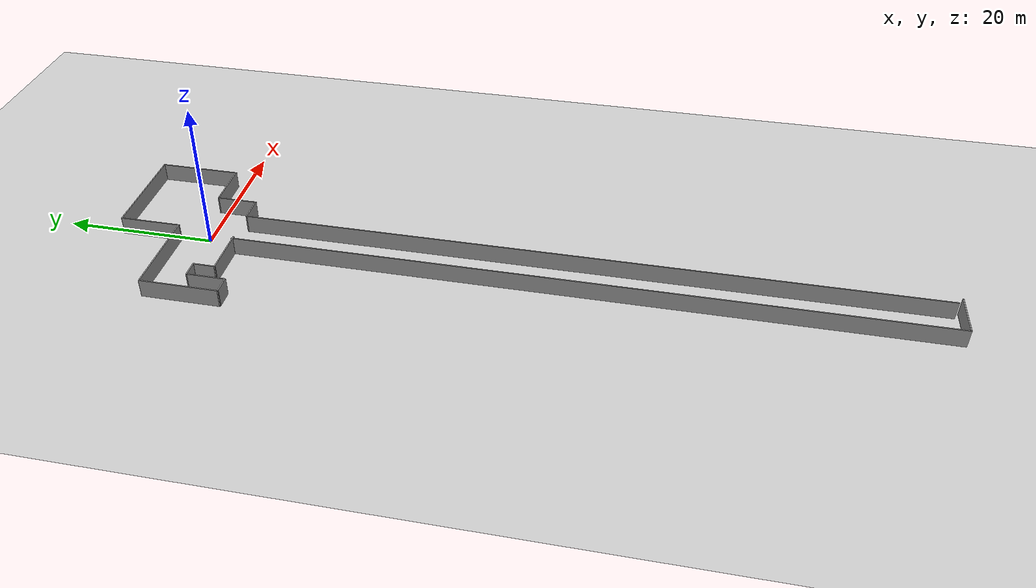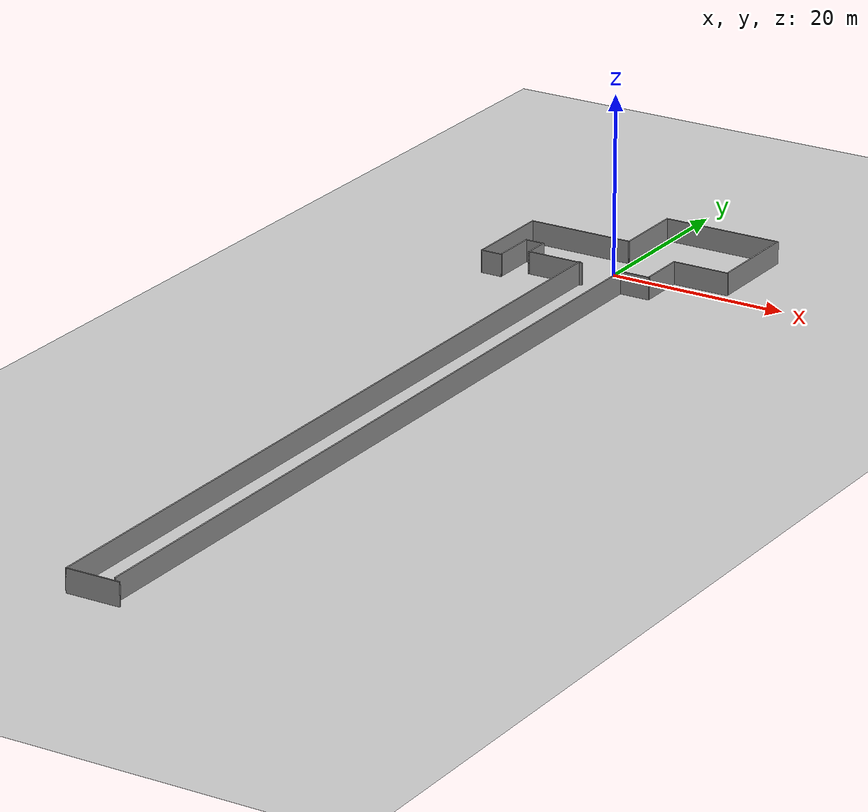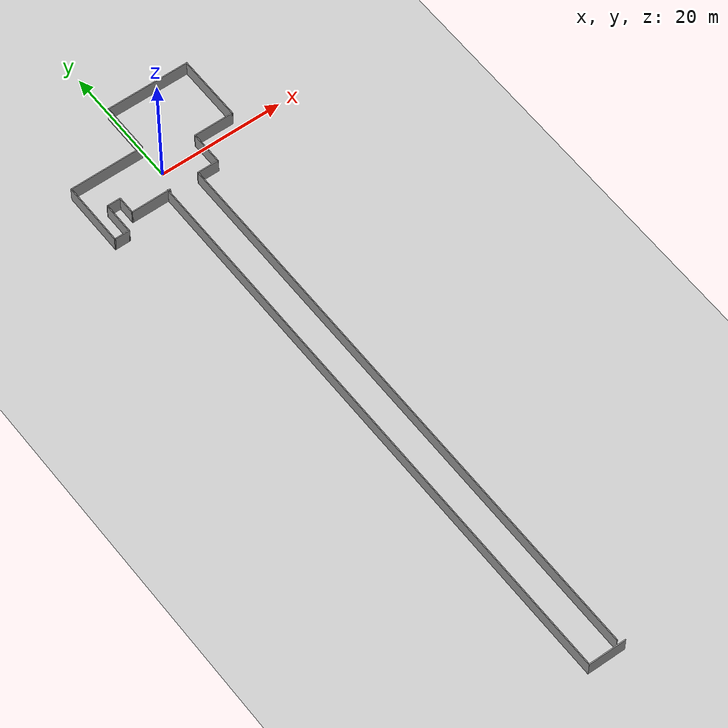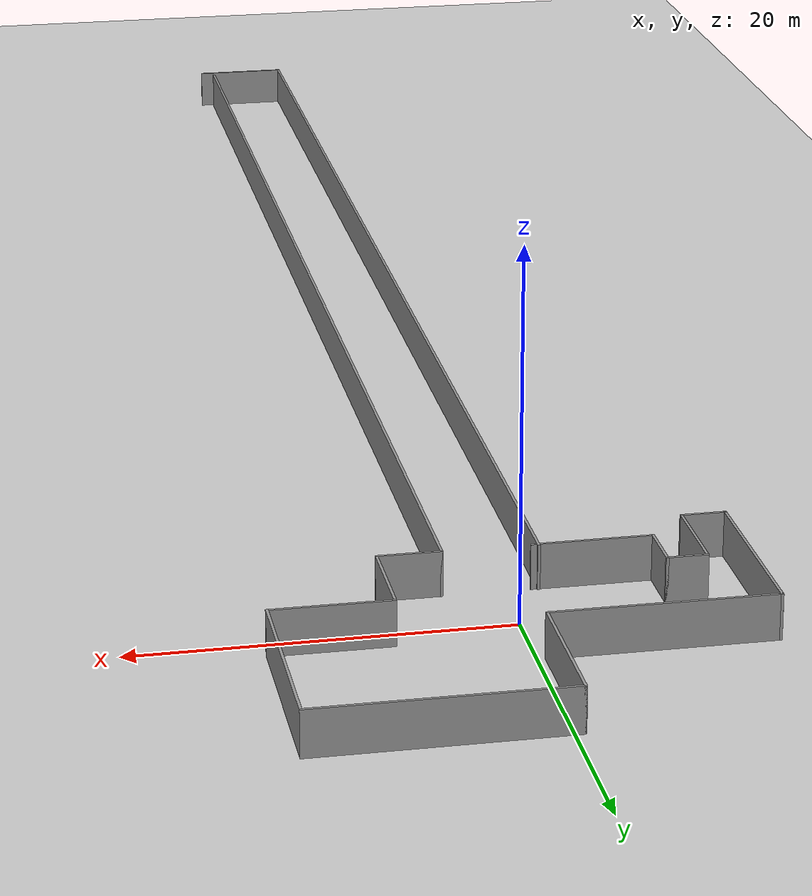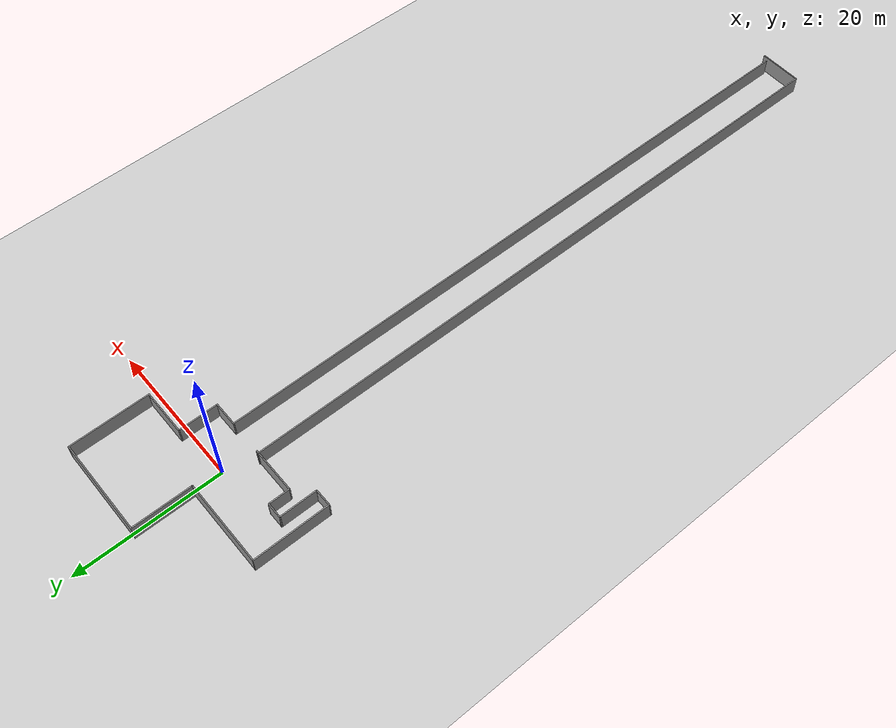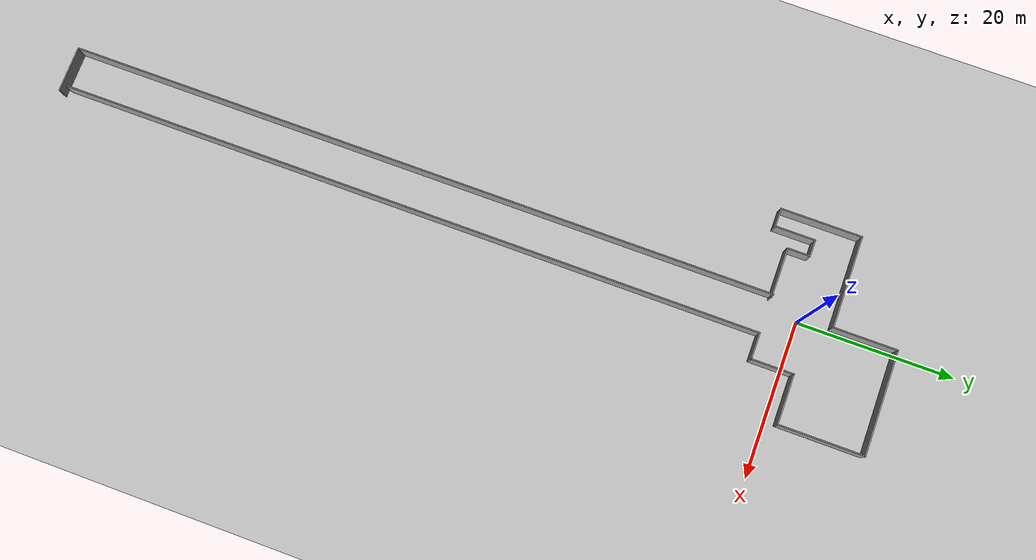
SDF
<sdf version="1.7">
 <world name="default">
  <light name="sun" type="directional">
   <pose>0 0 10 0 -0 0</pose>
   <diffuse>0.8 0.8 0.8 1</diffuse>
   <specular>0.2 0.2 0.2 1</specular>
   <attenuation>
    <range>1000</range>
    <constant>0.9</constant>
    <linear>0.01</linear>
    <quadratic>0.001</quadratic>
   </attenuation>
   <direction>-0.5 0.1 -0.9</direction>
   <spot><inner_angle>0</inner_angle><outer_angle>0</outer_angle><falloff>0</falloff></spot>
  </light>
  <model name="ground_plane">
   <static>1</static>
   <link name="link">
    <collision name="collision">
     <geometry><plane><normal>0 0 1</normal><size>100 100</size></plane></geometry>
     <surface><friction><ode><mu>100</mu><mu2>50</mu2></ode></friction></surface>
    </collision>
    <visual name="visual">
     <cast_shadows>0</cast_shadows>
     <geometry><plane><normal>0 0 1</normal><size>100 100</size></plane></geometry>
     <material>
      <script><uri>file://media/materials/scripts/gazebo.material</uri><name>Gazebo/Grey</name></script>
     </material>
    </visual>
   </link>
  </model>
  <gravity>0 0 -9.8</gravity>
  <magnetic_field>6e-06 2.3e-05 -4.2e-05</magnetic_field>
  <atmosphere type="adiabatic"/>
  <physics type="ode">
   <max_step_size>0.001</max_step_size>
   <real_time_factor>1</real_time_factor>
   <real_time_update_rate>1000</real_time_update_rate>
  </physics>
  <scene><ambient>0.4 0.4 0.4 1</ambient><background>0.7 0.7 0.7 1</background><shadows>1</shadows></scene>
  <audio><device>default</device></audio>
  <spherical_coordinates>
   <surface_model>EARTH_WGS84</surface_model>
   <latitude_deg>0</latitude_deg>
   <longitude_deg>0</longitude_deg>
   <elevation>0</elevation>
   <heading_deg>0</heading_deg>
  </spherical_coordinates>
  <model name="Untitled2">
   <pose>0.27 -41.7689 0 0 -0 0</pose>
   <link name="Wall_0">
    <collision name="Wall_0_Collision">
     <geometry><box><size>6.5 0.15 2.5</size></box></geometry>
     <pose>0 0 1.25 0 -0 0</pose>
    </collision>
    <visual name="Wall_0_Visual">
     <pose>0 0 1.25 0 -0 0</pose>
     <geometry><box><size>6.5 0.15 2.5</size></box></geometry>
     <material>
      <script><uri>file://media/materials/scripts/gazebo.material</uri><name>Gazebo/Grey</name></script>
      <ambient>1 1 1 1</ambient>
     </material>
     <meta><layer>0</layer></meta>
    </visual>
    <pose>-4.975 37.6389 0 0 -0 3.14159</pose>
   </link>
   <link name="Wall_1">
    <collision name="Wall_1_Collision">
     <geometry><box><size>3 0.15 2.5</size></box></geometry>
     <pose>0 0 1.25 0 -0 0</pose>
    </collision>
    <visual name="Wall_1_Visual">
     <pose>0 0 1.25 0 -0 0</pose>
     <geometry><box><size>3 0.15 2.5</size></box></geometry>
     <material>
      <script><uri>file://media/materials/scripts/gazebo.material</uri><name>Gazebo/Grey</name></script>
      <ambient>1 1 1 1</ambient>
     </material>
     <meta><layer>0</layer></meta>
    </visual>
    <pose>-8.15 39.0639 0 0 -0 1.5708</pose>
   </link>
   <link name="Wall_10">
    <collision name="Wall_10_Collision">
     <geometry><box><size>6.5 0.15 2.5</size></box></geometry>
     <pose>0 0 1.25 0 -0 0</pose>
    </collision>
    <visual name="Wall_10_Visual">
     <pose>0 0 1.25 0 -0 0</pose>
     <geometry><box><size>6.5 0.15 2.5</size></box></geometry>
     <material>
      <script><uri>file://media/materials/scripts/gazebo.material</uri><name>Gazebo/Grey</name></script>
      <ambient>1 1 1 1</ambient>
     </material>
     <meta><layer>0</layer></meta>
    </visual>
    <pose>9.425 42.9889 0 0 -0 3.14159</pose>
   </link>
   <link name="Wall_11">
    <collision name="Wall_11_Collision">
     <geometry><box><size>5.5 0.15 2.5</size></box></geometry>
     <pose>0 0 1.25 0 -0 0</pose>
    </collision>
    <visual name="Wall_11_Visual">
     <pose>0 0 1.25 0 -0 0</pose>
     <geometry><box><size>5.5 0.15 2.5</size></box></geometry>
     <material>
      <script><uri>file://media/materials/scripts/gazebo.material</uri><name>Gazebo/Grey</name></script>
      <ambient>1 1 1 1</ambient>
     </material>
     <meta><layer>0</layer></meta>
    </visual>
    <pose>6.25 40.3139 0 0 -0 -1.5708</pose>
   </link>
   <link name="Wall_12">
    <collision name="Wall_12_Collision">
     <geometry><box><size>3.5 0.15 2.5</size></box></geometry>
     <pose>0 0 1.25 0 -0 0</pose>
    </collision>
    <visual name="Wall_12_Visual">
     <pose>0 0 1.25 0 -0 0</pose>
     <geometry><box><size>3.5 0.15 2.5</size></box></geometry>
     <material>
      <script><uri>file://media/materials/scripts/gazebo.material</uri><name>Gazebo/Grey</name></script>
      <ambient>1 1 1 1</ambient>
     </material>
     <meta><layer>0</layer></meta>
    </visual>
    <pose>4.575 37.6389 0 0 -0 3.14159</pose>
   </link>
   <link name="Wall_13">
    <collision name="Wall_13_Collision">
     <geometry><box><size>91 0.15 2.5</size></box></geometry>
     <pose>0 0 1.25 0 -0 0</pose>
    </collision>
    <visual name="Wall_13_Visual">
     <pose>0 0 1.25 0 -0 0</pose>
     <geometry><box><size>91 0.15 2.5</size></box></geometry>
     <material>
      <script><uri>file://media/materials/scripts/gazebo.material</uri><name>Gazebo/Grey</name></script>
      <ambient>1 1 1 1</ambient>
     </material>
     <meta><layer>0</layer></meta>
    </visual>
    <pose>2.9 -7.7861 0 0 -0 -1.5708</pose>
   </link>
   <link name="Wall_15">
    <collision name="Wall_15_Collision">
     <geometry><box><size>91.75 0.15 2.5</size></box></geometry>
     <pose>0 0 1.25 0 -0 0</pose>
    </collision>
    <visual name="Wall_15_Visual">
     <pose>0 0 1.25 0 -0 0</pose>
     <geometry><box><size>91.75 0.15 2.5</size></box></geometry>
     <material>
      <script><uri>file://media/materials/scripts/gazebo.material</uri><name>Gazebo/Grey</name></script>
      <ambient>1 1 1 1</ambient>
     </material>
     <meta><layer>0</layer></meta>
    </visual>
    <pose>-2.12555 -8.0389 0 0 -0 -1.5708</pose>
   </link>
   <link name="Wall_16">
    <collision name="Wall_16_Collision">
     <geometry><box><size>6 0.15 2.5</size></box></geometry>
     <pose>0 0 1.25 0 -0 0</pose>
    </collision>
    <visual name="Wall_16_Visual">
     <pose>0 0 1.25 0 -0 0</pose>
     <geometry><box><size>6 0.15 2.5</size></box></geometry>
     <material>
      <script><uri>file://media/materials/scripts/gazebo.material</uri><name>Gazebo/Grey</name></script>
      <ambient>1 1 1 1</ambient>
     </material>
     <meta><layer>0</layer></meta>
    </visual>
    <pose>0.799448 -53.8389 0 0 -0 0</pose>
   </link>
   <link name="Wall_2">
    <collision name="Wall_2_Collision">
     <geometry><box><size>2.25 0.15 2.5</size></box></geometry>
     <pose>0 0 1.25 0 -0 0</pose>
    </collision>
    <visual name="Wall_2_Visual">
     <pose>0 0 1.25 0 -0 0</pose>
     <geometry><box><size>2.25 0.15 2.5</size></box></geometry>
     <material>
      <script><uri>file://media/materials/scripts/gazebo.material</uri><name>Gazebo/Grey</name></script>
      <ambient>1 1 1 1</ambient>
     </material>
     <meta><layer>0</layer></meta>
    </visual>
    <pose>-9.2 40.4889 0 0 -0 3.14159</pose>
   </link>
   <link name="Wall_3">
    <collision name="Wall_3_Collision">
     <geometry><box><size>5.25 0.15 2.5</size></box></geometry>
     <pose>0 0 1.25 0 -0 0</pose>
    </collision>
    <visual name="Wall_3_Visual">
     <pose>0 0 1.25 0 -0 0</pose>
     <geometry><box><size>5.25 0.15 2.5</size></box></geometry>
     <material>
      <script><uri>file://media/materials/scripts/gazebo.material</uri><name>Gazebo/Grey</name></script>
      <ambient>1 1 1 1</ambient>
     </material>
     <meta><layer>0</layer></meta>
    </visual>
    <pose>-10.25 37.9389 0 0 -0 -1.5708</pose>
   </link>
   <link name="Wall_4">
    <collision name="Wall_4_Collision">
     <geometry><box><size>2.5 0.15 2.5</size></box></geometry>
     <pose>0 0 1.25 0 -0 0</pose>
    </collision>
    <visual name="Wall_4_Visual">
     <pose>0 0 1.25 0 -0 0</pose>
     <geometry><box><size>2.5 0.15 2.5</size></box></geometry>
     <material>
      <script><uri>file://media/materials/scripts/gazebo.material</uri><name>Gazebo/Grey</name></script>
      <ambient>1 1 1 1</ambient>
     </material>
     <meta><layer>0</layer></meta>
    </visual>
    <pose>-11.425 35.3889 0 0 -0 3.14159</pose>
   </link>
   <link name="Wall_5">
    <collision name="Wall_5_Collision">
     <geometry><box><size>10.5 0.15 2.5</size></box></geometry>
     <pose>0 0 1.25 0 -0 0</pose>
    </collision>
    <visual name="Wall_5_Visual">
     <pose>0 0 1.25 0 -0 0</pose>
     <geometry><box><size>10.5 0.15 2.5</size></box></geometry>
     <material>
      <script><uri>file://media/materials/scripts/gazebo.material</uri><name>Gazebo/Grey</name></script>
      <ambient>1 1 1 1</ambient>
     </material>
     <meta><layer>0</layer></meta>
    </visual>
    <pose>-12.6 40.5639 0 0 -0 1.5708</pose>
   </link>
   <link name="Wall_6">
    <collision name="Wall_6_Collision">
     <geometry><box><size>12 0.15 2.5</size></box></geometry>
     <pose>0 0 1.25 0 -0 0</pose>
    </collision>
    <visual name="Wall_6_Visual">
     <pose>0 0 1.25 0 -0 0</pose>
     <geometry><box><size>12 0.15 2.5</size></box></geometry>
     <material>
      <script><uri>file://media/materials/scripts/gazebo.material</uri><name>Gazebo/Grey</name></script>
      <ambient>1 1 1 1</ambient>
     </material>
     <meta><layer>0</layer></meta>
    </visual>
    <pose>-6.675 45.7389 0 0 -0 0</pose>
   </link>
   <link name="Wall_7">
    <collision name="Wall_7_Collision">
     <geometry><box><size>8.25 0.15 2.5</size></box></geometry>
     <pose>0 0 1.25 0 -0 0</pose>
    </collision>
    <visual name="Wall_7_Visual">
     <pose>0 0 1.25 0 -0 0</pose>
     <geometry><box><size>8.25 0.15 2.5</size></box></geometry>
     <material>
      <script><uri>file://media/materials/scripts/gazebo.material</uri><name>Gazebo/Grey</name></script>
      <ambient>1 1 1 1</ambient>
     </material>
     <meta><layer>0</layer></meta>
    </visual>
    <pose>-0.75 49.7889 0 0 -0 1.5708</pose>
   </link>
   <link name="Wall_8">
    <collision name="Wall_8_Collision">
     <geometry><box><size>13.5 0.15 2.5</size></box></geometry>
     <pose>0 0 1.25 0 -0 0</pose>
    </collision>
    <visual name="Wall_8_Visual">
     <pose>0 0 1.25 0 -0 0</pose>
     <geometry><box><size>13.5 0.15 2.5</size></box></geometry>
     <material>
      <script><uri>file://media/materials/scripts/gazebo.material</uri><name>Gazebo/Grey</name></script>
      <ambient>1 1 1 1</ambient>
     </material>
     <meta><layer>0</layer></meta>
    </visual>
    <pose>5.925 53.8389 0 0 -0 0</pose>
   </link>
   <link name="Wall_9">
    <collision name="Wall_9_Collision">
     <geometry><box><size>11 0.15 2.5</size></box></geometry>
     <pose>0 0 1.25 0 -0 0</pose>
    </collision>
    <visual name="Wall_9_Visual">
     <pose>0 0 1.25 0 -0 0</pose>
     <geometry><box><size>11 0.15 2.5</size></box></geometry>
     <material>
      <script><uri>file://media/materials/scripts/gazebo.material</uri><name>Gazebo/Grey</name></script>
      <ambient>1 1 1 1</ambient>
     </material>
     <meta><layer>0</layer></meta>
    </visual>
    <pose>12.6 48.4139 0 0 -0 -1.5708</pose>
   </link>
   <static>1</static>
  </model>
 </world>
</sdf>
